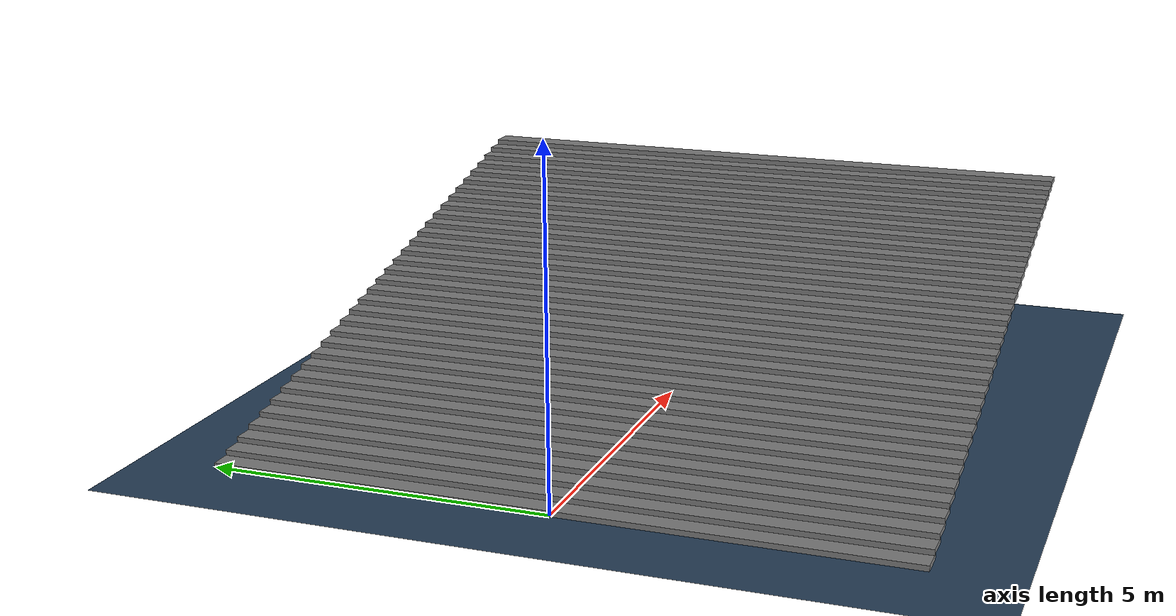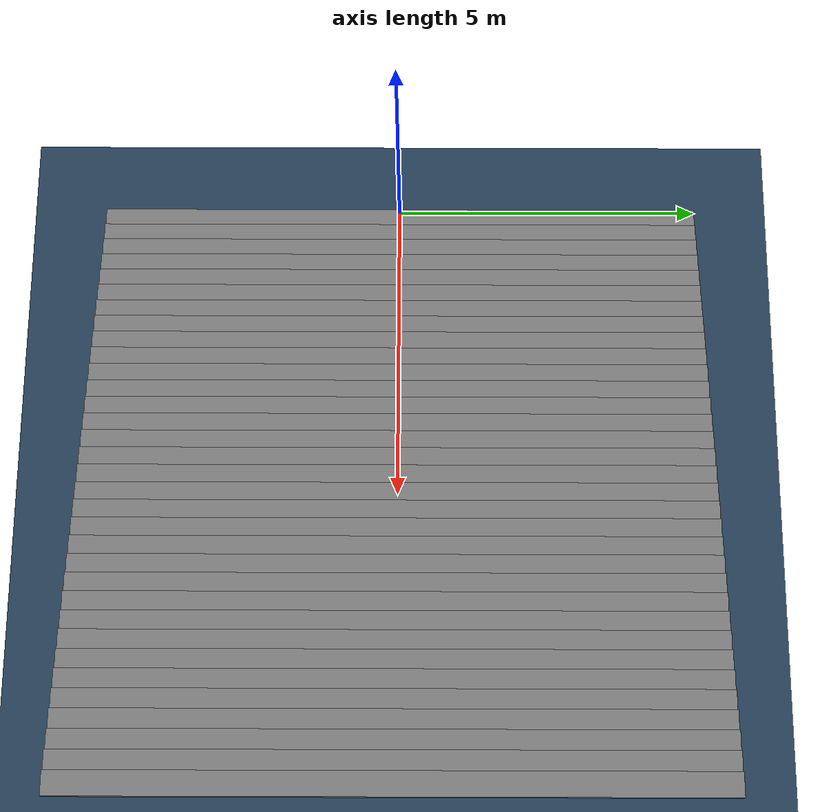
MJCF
<mujoco model="stairs_up_1">
  <!-- Terrain Type: stairs_up, Level: 1, Stairs step height: 0.0800 -->
  <statistic center="0 0 0.1" extent="0.8" />
  <visual>
    <headlight diffuse="0.6 0.6 0.6" ambient="0.3 0.3 0.3" specular="0 0 0" />
    <rgba haze="0.15 0.25 0.35 1" />
    <global azimuth="-130" elevation="-20" />
  </visual>
  <asset>
    <texture type="skybox" builtin="gradient" rgb1="0.3 0.5 0.7" rgb2="0 0 0" width="512" height="3072" />
    <texture type="2d" name="groundplane" builtin="checker" mark="edge" rgb1="0.2 0.3 0.4" rgb2="0.1 0.2 0.3" markrgb="0.8 0.8 0.8" width="300" height="300" />
    <material name="groundplane" texture="groundplane" texuniform="true" texrepeat="5 5" reflectance="0.0" />
  </asset>
  <worldbody>
    <light pos="0 0 1.5" dir="0 0 -1" directional="true" />
    <geom name="floor" size="0 0 0.05" type="plane" material="groundplane" />
    <geom pos="0.155 0.0 0.04" type="box" size="0.186 5.0 0.04" quat="1.0 0.0 0.0 0.0" />
    <geom pos="0.46499999999999997 0.0 0.12" type="box" size="0.186 5.0 0.04" quat="1.0 0.0 0.0 0.0" />
    <geom pos="0.7749999999999999 0.0 0.2" type="box" size="0.186 5.0 0.04" quat="1.0 0.0 0.0 0.0" />
    <geom pos="1.085 0.0 0.28" type="box" size="0.186 5.0 0.04" quat="1.0 0.0 0.0 0.0" />
    <geom pos="1.395 0.0 0.36000000000000004" type="box" size="0.186 5.0 0.04" quat="1.0 0.0 0.0 0.0" />
    <geom pos="1.705 0.0 0.44000000000000006" type="box" size="0.186 5.0 0.04" quat="1.0 0.0 0.0 0.0" />
    <geom pos="2.015 0.0 0.52" type="box" size="0.186 5.0 0.04" quat="1.0 0.0 0.0 0.0" />
    <geom pos="2.325 0.0 0.6" type="box" size="0.186 5.0 0.04" quat="1.0 0.0 0.0 0.0" />
    <geom pos="2.6350000000000002 0.0 0.6799999999999999" type="box" size="0.186 5.0 0.04" quat="1.0 0.0 0.0 0.0" />
    <geom pos="2.9450000000000003 0.0 0.7599999999999999" type="box" size="0.186 5.0 0.04" quat="1.0 0.0 0.0 0.0" />
    <geom pos="3.2550000000000003 0.0 0.8399999999999999" type="box" size="0.186 5.0 0.04" quat="1.0 0.0 0.0 0.0" />
    <geom pos="3.5650000000000004 0.0 0.9199999999999998" type="box" size="0.186 5.0 0.04" quat="1.0 0.0 0.0 0.0" />
    <geom pos="3.8750000000000004 0.0 0.9999999999999998" type="box" size="0.186 5.0 0.04" quat="1.0 0.0 0.0 0.0" />
    <geom pos="4.1850000000000005 0.0 1.0799999999999998" type="box" size="0.186 5.0 0.04" quat="1.0 0.0 0.0 0.0" />
    <geom pos="4.495 0.0 1.16" type="box" size="0.186 5.0 0.04" quat="1.0 0.0 0.0 0.0" />
    <geom pos="4.805 0.0 1.24" type="box" size="0.186 5.0 0.04" quat="1.0 0.0 0.0 0.0" />
    <geom pos="5.114999999999999 0.0 1.32" type="box" size="0.186 5.0 0.04" quat="1.0 0.0 0.0 0.0" />
    <geom pos="5.424999999999999 0.0 1.4000000000000001" type="box" size="0.186 5.0 0.04" quat="1.0 0.0 0.0 0.0" />
    <geom pos="5.7349999999999985 0.0 1.4800000000000002" type="box" size="0.186 5.0 0.04" quat="1.0 0.0 0.0 0.0" />
    <geom pos="6.044999999999998 0.0 1.5600000000000003" type="box" size="0.186 5.0 0.04" quat="1.0 0.0 0.0 0.0" />
    <geom pos="6.354999999999998 0.0 1.6400000000000003" type="box" size="0.186 5.0 0.04" quat="1.0 0.0 0.0 0.0" />
    <geom pos="6.664999999999997 0.0 1.7200000000000004" type="box" size="0.186 5.0 0.04" quat="1.0 0.0 0.0 0.0" />
    <geom pos="6.974999999999997 0.0 1.8000000000000005" type="box" size="0.186 5.0 0.04" quat="1.0 0.0 0.0 0.0" />
    <geom pos="7.284999999999997 0.0 1.8800000000000006" type="box" size="0.186 5.0 0.04" quat="1.0 0.0 0.0 0.0" />
    <geom pos="7.594999999999996 0.0 1.9600000000000006" type="box" size="0.186 5.0 0.04" quat="1.0 0.0 0.0 0.0" />
    <geom pos="7.904999999999996 0.0 2.0400000000000005" type="box" size="0.186 5.0 0.04" quat="1.0 0.0 0.0 0.0" />
    <geom pos="8.214999999999996 0.0 2.1200000000000006" type="box" size="0.186 5.0 0.04" quat="1.0 0.0 0.0 0.0" />
    <geom pos="8.524999999999997 0.0 2.2000000000000006" type="box" size="0.186 5.0 0.04" quat="1.0 0.0 0.0 0.0" />
    <geom pos="8.834999999999997 0.0 2.2800000000000007" type="box" size="0.186 5.0 0.04" quat="1.0 0.0 0.0 0.0" />
    <geom pos="9.144999999999998 0.0 2.3600000000000008" type="box" size="0.186 5.0 0.04" quat="1.0 0.0 0.0 0.0" />
    <geom pos="9.454999999999998 0.0 2.440000000000001" type="box" size="0.186 5.0 0.04" quat="1.0 0.0 0.0 0.0" />
    <geom pos="9.764999999999999 0.0 2.520000000000001" type="box" size="0.186 5.0 0.04" quat="1.0 0.0 0.0 0.0" />
    <geom pos="10.075 0.0 2.600000000000001" type="box" size="0.186 5.0 0.04" quat="1.0 0.0 0.0 0.0" />
  </worldbody>
</mujoco>
